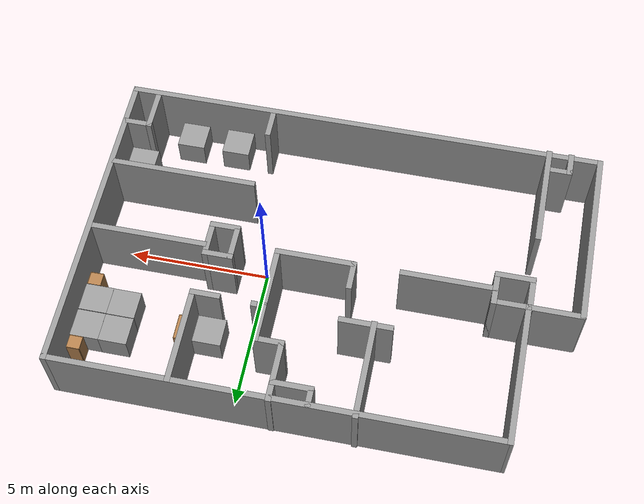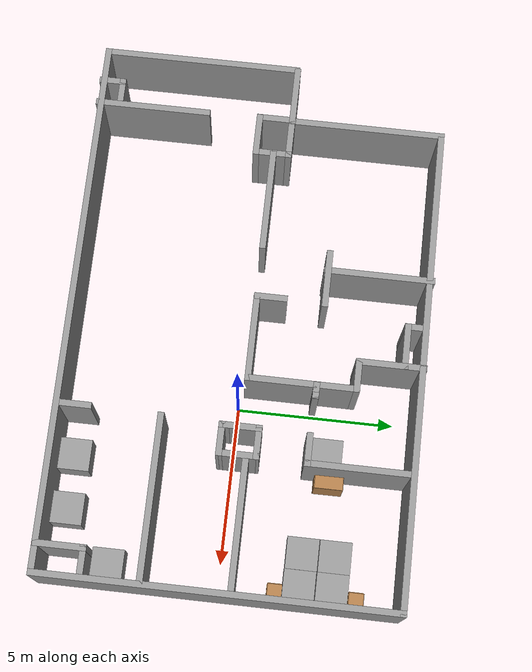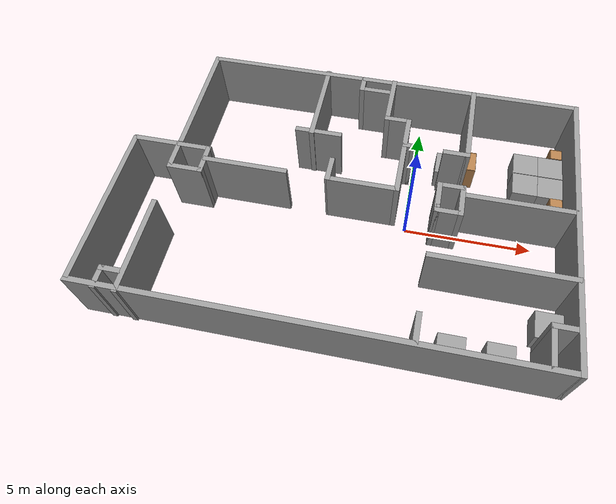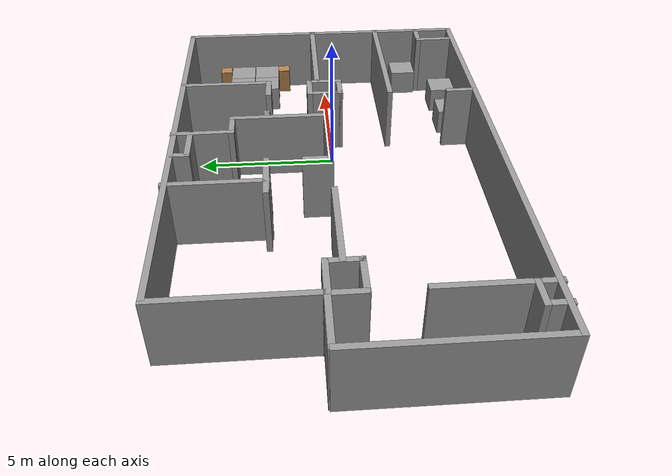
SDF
<sdf version="1.4">
 <world name="default">
  <model name="roy4">
   <link name="Wall_0">
    <collision name="Wall_0_Collision">
     <geometry><box><size>6.43031 0.2 2.5</size></box></geometry>
     <pose>0 0 1.25 0 -0 0</pose>
    </collision>
    <visual name="Wall_0_Visual">
     <pose>0 0 1.25 0 -0 0</pose>
     <geometry><box><size>6.43031 0.2 2.5</size></box></geometry>
     <material>
      <script><uri>file://media/materials/scripts/gazebo.material</uri><name>Gazebo/Grey</name></script>
     </material>
    </visual>
    <velocity_decay><linear>0</linear><angular>0</angular></velocity_decay>
    <pose>-17.0197 -4.40915 0 0 0 -1.5708</pose>
   </link>
   <link name="Wall_1">
    <collision name="Wall_1_Collision">
     <geometry><box><size>17.3127 0.2 2.5</size></box></geometry>
     <pose>0 0 1.25 0 -0 0</pose>
    </collision>
    <visual name="Wall_1_Visual">
     <pose>0 0 1.25 0 -0 0</pose>
     <geometry><box><size>17.3127 0.2 2.5</size></box></geometry>
     <material>
      <script><uri>file://media/materials/scripts/gazebo.material</uri><name>Gazebo/Grey</name></script>
     </material>
    </visual>
    <velocity_decay><linear>0</linear><angular>0</angular></velocity_decay>
    <pose>-8.46335 -7.52431 0 0 -0 0</pose>
   </link>
   <link name="Wall_11">
    <collision name="Wall_11_Collision">
     <geometry><box><size>3.74537 0.2 2.5</size></box></geometry>
     <pose>0 0 1.25 0 -0 0</pose>
    </collision>
    <visual name="Wall_11_Visual">
     <pose>0 0 1.25 0 -0 0</pose>
     <geometry><box><size>3.74537 0.2 2.5</size></box></geometry>
     <material>
      <script><uri>file://media/materials/scripts/gazebo.material</uri><name>Gazebo/Grey</name></script>
     </material>
    </visual>
    <velocity_decay><linear>0</linear><angular>0</angular></velocity_decay>
    <pose>-15.1992 -5.81781 0 0 0 -1.5708</pose>
   </link>
   <link name="Wall_13">
    <collision name="Wall_13_Collision">
     <geometry><box><size>1.26434 0.2 2.5</size></box></geometry>
     <pose>0 0 1.25 0 -0 0</pose>
    </collision>
    <visual name="Wall_13_Visual">
     <pose>0 0 1.25 0 -0 0</pose>
     <geometry><box><size>1.26434 0.2 2.5</size></box></geometry>
     <material>
      <script><uri>file://media/materials/scripts/gazebo.material</uri><name>Gazebo/Grey</name></script>
     </material>
    </visual>
    <velocity_decay><linear>0</linear><angular>0</angular></velocity_decay>
    <pose>-15.2322 -1.76883 0 0 0 -1.5708</pose>
   </link>
   <link name="Wall_19">
    <collision name="Wall_19_Collision">
     <geometry><box><size>3.5068 0.2 2.5</size></box></geometry>
     <pose>0 0 1.25 0 -0 0</pose>
    </collision>
    <visual name="Wall_19_Visual">
     <pose>0 0 1.25 0 -0 0</pose>
     <geometry><box><size>3.5068 0.2 2.5</size></box></geometry>
     <material>
      <script><uri>file://media/materials/scripts/gazebo.material</uri><name>Gazebo/Grey</name></script>
     </material>
    </visual>
    <velocity_decay><linear>0</linear><angular>0</angular></velocity_decay>
    <pose>-10.2614 2.01073 0 0 0 -1.5708</pose>
   </link>
   <link name="Wall_2">
    <collision name="Wall_2_Collision">
     <geometry><box><size>11.3253 0.2 2.5</size></box></geometry>
     <pose>0 0 1.25 0 -0 0</pose>
    </collision>
    <visual name="Wall_2_Visual">
     <pose>0 0 1.25 0 -0 0</pose>
     <geometry><box><size>11.3253 0.2 2.5</size></box></geometry>
     <material>
      <script><uri>file://media/materials/scripts/gazebo.material</uri><name>Gazebo/Grey</name></script>
     </material>
    </visual>
    <velocity_decay><linear>0</linear><angular>0</angular></velocity_decay>
    <pose>0.093002 -1.96166 0 0 -0 1.5708</pose>
   </link>
   <link name="Wall_21">
    <collision name="Wall_21_Collision">
     <geometry><box><size>1.868 0.2 2.5</size></box></geometry>
     <pose>0 0 1.25 0 -0 0</pose>
    </collision>
    <visual name="Wall_21_Visual">
     <pose>0 0 1.25 0 -0 0</pose>
     <geometry><box><size>1.868 0.2 2.5</size></box></geometry>
     <material>
      <script><uri>file://media/materials/scripts/gazebo.material</uri><name>Gazebo/Grey</name></script>
     </material>
    </visual>
    <velocity_decay><linear>0</linear><angular>0</angular></velocity_decay>
    <pose>-9.9903 0.392512 0 0 -0 0</pose>
   </link>
   <link name="Wall_23">
    <collision name="Wall_23_Collision">
     <geometry><box><size>4.25711 0.2 2.5</size></box></geometry>
     <pose>0 0 1.25 0 -0 0</pose>
    </collision>
    <visual name="Wall_23_Visual">
     <pose>0 0 1.25 0 -0 0</pose>
     <geometry><box><size>4.25711 0.2 2.5</size></box></geometry>
     <material>
      <script><uri>file://media/materials/scripts/gazebo.material</uri><name>Gazebo/Grey</name></script>
     </material>
    </visual>
    <velocity_decay><linear>0</linear><angular>0</angular></velocity_decay>
    <pose>-1.94744 -1.54232 0 0 -0 3.14159</pose>
   </link>
   <link name="Wall_25">
    <collision name="Wall_25_Collision">
     <geometry><box><size>1.3609 0.2 2.5</size></box></geometry>
     <pose>0 0 1.25 0 -0 0</pose>
    </collision>
    <visual name="Wall_25_Visual">
     <pose>0 0 1.25 0 -0 0</pose>
     <geometry><box><size>1.3609 0.2 2.5</size></box></geometry>
     <material>
      <script><uri>file://media/materials/scripts/gazebo.material</uri><name>Gazebo/Grey</name></script>
     </material>
    </visual>
    <velocity_decay><linear>0</linear><angular>0</angular></velocity_decay>
    <pose>-14.606 -1.26089 0 0 -0 0</pose>
   </link>
   <link name="Wall_26">
    <collision name="Wall_26_Collision">
     <geometry><box><size>1.25536 0.2 2.5</size></box></geometry>
     <pose>0 0 1.25 0 -0 0</pose>
    </collision>
    <visual name="Wall_26_Visual">
     <pose>0 0 1.25 0 -0 0</pose>
     <geometry><box><size>1.25536 0.2 2.5</size></box></geometry>
     <material>
      <script><uri>file://media/materials/scripts/gazebo.material</uri><name>Gazebo/Grey</name></script>
     </material>
    </visual>
    <velocity_decay><linear>0</linear><angular>0</angular></velocity_decay>
    <pose>-14.0256 -1.78857 0 0 0 -1.5708</pose>
   </link>
   <link name="Wall_27">
    <collision name="Wall_27_Collision">
     <geometry><box><size>1.39608 0.2 2.5</size></box></geometry>
     <pose>0 0 1.25 0 -0 0</pose>
    </collision>
    <visual name="Wall_27_Visual">
     <pose>0 0 1.25 0 -0 0</pose>
     <geometry><box><size>1.39608 0.2 2.5</size></box></geometry>
     <material>
      <script><uri>file://media/materials/scripts/gazebo.material</uri><name>Gazebo/Grey</name></script>
     </material>
    </visual>
    <velocity_decay><linear>0</linear><angular>0</angular></velocity_decay>
    <pose>-14.6236 -2.31625 0 0 -0 3.14159</pose>
   </link>
   <link name="Wall_29">
    <collision name="Wall_29_Collision">
     <geometry><box><size>3.33091 0.2 2.5</size></box></geometry>
     <pose>0 0 1.25 0 -0 0</pose>
    </collision>
    <visual name="Wall_29_Visual">
     <pose>0 0 1.25 0 -0 0</pose>
     <geometry><box><size>3.33091 0.2 2.5</size></box></geometry>
     <material>
      <script><uri>file://media/materials/scripts/gazebo.material</uri><name>Gazebo/Grey</name></script>
     </material>
    </visual>
    <velocity_decay><linear>0</linear><angular>0</angular></velocity_decay>
    <pose>-12.4249 -1.75339 0 0 -0 0</pose>
   </link>
   <link name="Wall_3">
    <collision name="Wall_3_Collision">
     <geometry><box><size>15.3708 0.2 2.5</size></box></geometry>
     <pose>0 0 1.25 0 -0 0</pose>
    </collision>
    <visual name="Wall_3_Visual">
     <pose>0 0 1.25 0 -0 0</pose>
     <geometry><box><size>15.3708 0.2 2.5</size></box></geometry>
     <material>
      <script><uri>file://media/materials/scripts/gazebo.material</uri><name>Gazebo/Grey</name></script>
     </material>
    </visual>
    <velocity_decay><linear>0</linear><angular>0</angular></velocity_decay>
    <pose>-7.49242 3.60098 0 0 -0 3.14159</pose>
   </link>
   <link name="Wall_31">
    <collision name="Wall_31_Collision">
     <geometry><box><size>2.77907 0.2 2.5</size></box></geometry>
     <pose>0 0 1.25 0 -0 0</pose>
    </collision>
    <visual name="Wall_31_Visual">
     <pose>0 0 1.25 0 -0 0</pose>
     <geometry><box><size>2.77907 0.2 2.5</size></box></geometry>
     <material>
      <script><uri>file://media/materials/scripts/gazebo.material</uri><name>Gazebo/Grey</name></script>
     </material>
    </visual>
    <velocity_decay><linear>0</linear><angular>0</angular></velocity_decay>
    <pose>-7.82203 -1.75339 0 0 -0 0</pose>
   </link>
   <link name="Wall_32">
    <collision name="Wall_32_Collision">
     <geometry><box><size>3.57716 0.2 2.5</size></box></geometry>
     <pose>0 0 1.25 0 -0 0</pose>
    </collision>
    <visual name="Wall_32_Visual">
     <pose>0 0 1.25 0 -0 0</pose>
     <geometry><box><size>3.57716 0.2 2.5</size></box></geometry>
     <material>
      <script><uri>file://media/materials/scripts/gazebo.material</uri><name>Gazebo/Grey</name></script>
     </material>
    </visual>
    <velocity_decay><linear>0</linear><angular>0</angular></velocity_decay>
    <pose>-6.53249 -0.064812 0 0 -0 1.5708</pose>
   </link>
   <link name="Wall_33">
    <collision name="Wall_33_Collision">
     <geometry><box><size>1.07947 0.2 2.5</size></box></geometry>
     <pose>0 0 1.25 0 -0 0</pose>
    </collision>
    <visual name="Wall_33_Visual">
     <pose>0 0 1.25 0 -0 0</pose>
     <geometry><box><size>1.07947 0.2 2.5</size></box></geometry>
     <material>
      <script><uri>file://media/materials/scripts/gazebo.material</uri><name>Gazebo/Grey</name></script>
     </material>
    </visual>
    <velocity_decay><linear>0</linear><angular>0</angular></velocity_decay>
    <pose>-6.97223 1.62377 0 0 -0 3.14159</pose>
   </link>
   <link name="Wall_34">
    <collision name="Wall_34_Collision">
     <geometry><box><size>2.20642 0.2 2.5</size></box></geometry>
     <pose>0 0 1.25 0 -0 0</pose>
    </collision>
    <visual name="Wall_34_Visual">
     <pose>0 0 1.25 0 -0 0</pose>
     <geometry><box><size>2.20642 0.2 2.5</size></box></geometry>
     <material>
      <script><uri>file://media/materials/scripts/gazebo.material</uri><name>Gazebo/Grey</name></script>
     </material>
    </visual>
    <velocity_decay><linear>0</linear><angular>0</angular></velocity_decay>
    <pose>-7.41196 2.62652 0 0 -0 1.5708</pose>
   </link>
   <link name="Wall_36">
    <collision name="Wall_36_Collision">
     <geometry><box><size>0.732004 0.2 2.5</size></box></geometry>
     <pose>0 0 1.25 0 -0 0</pose>
    </collision>
    <visual name="Wall_36_Visual">
     <pose>0 0 1.25 0 -0 0</pose>
     <geometry><box><size>0.732004 0.2 2.5</size></box></geometry>
     <material>
      <script><uri>file://media/materials/scripts/gazebo.material</uri><name>Gazebo/Grey</name></script>
     </material>
    </visual>
    <velocity_decay><linear>0</linear><angular>0</angular></velocity_decay>
    <pose>-8.69464 3.30855 0 0 0 -1.5708</pose>
   </link>
   <link name="Wall_37">
    <collision name="Wall_37_Collision">
     <geometry><box><size>1.47218 0.2 2.5</size></box></geometry>
     <pose>0 0 1.25 0 -0 0</pose>
    </collision>
    <visual name="Wall_37_Visual">
     <pose>0 0 1.25 0 -0 0</pose>
     <geometry><box><size>1.47218 0.2 2.5</size></box></geometry>
     <material>
      <script><uri>file://media/materials/scripts/gazebo.material</uri><name>Gazebo/Grey</name></script>
     </material>
    </visual>
    <velocity_decay><linear>0</linear><angular>0</angular></velocity_decay>
    <pose>-8.05855 3.04255 0 0 -0 0</pose>
   </link>
   <link name="Wall_41">
    <collision name="Wall_41_Collision">
     <geometry><box><size>1.05583 0.2 2.5</size></box></geometry>
     <pose>0 0 1.25 0 -0 0</pose>
    </collision>
    <visual name="Wall_41_Visual">
     <pose>0 0 1.25 0 -0 0</pose>
     <geometry><box><size>1.05583 0.2 2.5</size></box></geometry>
     <material>
      <script><uri>file://media/materials/scripts/gazebo.material</uri><name>Gazebo/Grey</name></script>
     </material>
    </visual>
    <velocity_decay><linear>0</linear><angular>0</angular></velocity_decay>
    <pose>-9.18038 -1.31757 0 0 -0 1.5708</pose>
   </link>
   <link name="Wall_43">
    <collision name="Wall_43_Collision">
     <geometry><box><size>0.523829 0.2 2.5</size></box></geometry>
     <pose>0 0 1.25 0 -0 0</pose>
    </collision>
    <visual name="Wall_43_Visual">
     <pose>0 0 1.25 0 -0 0</pose>
     <geometry><box><size>0.523829 0.2 2.5</size></box></geometry>
     <material>
      <script><uri>file://media/materials/scripts/gazebo.material</uri><name>Gazebo/Grey</name></script>
     </material>
    </visual>
    <velocity_decay><linear>0</linear><angular>0</angular></velocity_decay>
    <pose>-6.35845 0.382531 0 0 -0 0</pose>
   </link>
   <link name="Wall_44">
    <collision name="Wall_44_Collision">
     <geometry><box><size>0.21 0.2 2.5</size></box></geometry>
     <pose>0 0 1.25 0 -0 0</pose>
    </collision>
    <visual name="Wall_44_Visual">
     <pose>0 0 1.25 0 -0 0</pose>
     <geometry><box><size>0.21 0.2 2.5</size></box></geometry>
     <material>
      <script><uri>file://media/materials/scripts/gazebo.material</uri><name>Gazebo/Grey</name></script>
     </material>
    </visual>
    <velocity_decay><linear>0</linear><angular>0</angular></velocity_decay>
    <pose>-6.19154 0.382531 0 0 -0 0</pose>
   </link>
   <link name="Wall_46">
    <collision name="Wall_46_Collision">
     <geometry><box><size>1.05614 0.2 2.5</size></box></geometry>
     <pose>0 0 1.25 0 -0 0</pose>
    </collision>
    <visual name="Wall_46_Visual">
     <pose>0 0 1.25 0 -0 0</pose>
     <geometry><box><size>1.05614 0.2 2.5</size></box></geometry>
     <material>
      <script><uri>file://media/materials/scripts/gazebo.material</uri><name>Gazebo/Grey</name></script>
     </material>
    </visual>
    <velocity_decay><linear>0</linear><angular>0</angular></velocity_decay>
    <pose>-4.49659 0.33627 0 0 -0 0</pose>
   </link>
   <link name="Wall_47">
    <collision name="Wall_47_Collision">
     <geometry><box><size>3.46142 0.2 2.5</size></box></geometry>
     <pose>0 0 1.25 0 -0 0</pose>
    </collision>
    <visual name="Wall_47_Visual">
     <pose>0 0 1.25 0 -0 0</pose>
     <geometry><box><size>3.46142 0.2 2.5</size></box></geometry>
     <material>
      <script><uri>file://media/materials/scripts/gazebo.material</uri><name>Gazebo/Grey</name></script>
     </material>
    </visual>
    <velocity_decay><linear>0</linear><angular>0</angular></velocity_decay>
    <pose>-4.06852 1.96698 0 0 -0 1.5708</pose>
   </link>
   <link name="Wall_5">
    <collision name="Wall_5_Collision">
     <geometry><box><size>1.98005 0.2 2.5</size></box></geometry>
     <pose>0 0 1.25 0 -0 0</pose>
    </collision>
    <visual name="Wall_5_Visual">
     <pose>0 0 1.25 0 -0 0</pose>
     <geometry><box><size>1.98005 0.2 2.5</size></box></geometry>
     <material>
      <script><uri>file://media/materials/scripts/gazebo.material</uri><name>Gazebo/Grey</name></script>
     </material>
    </visual>
    <velocity_decay><linear>0</linear><angular>0</angular></velocity_decay>
    <pose>-16.0892 -1.25369 0 0 -0 0</pose>
   </link>
   <link name="Wall_51">
    <collision name="Wall_51_Collision">
     <geometry><box><size>1.34428 0.2 2.5</size></box></geometry>
     <pose>0 0 1.25 0 -0 0</pose>
    </collision>
    <visual name="Wall_51_Visual">
     <pose>0 0 1.25 0 -0 0</pose>
     <geometry><box><size>1.34428 0.2 2.5</size></box></geometry>
     <material>
      <script><uri>file://media/materials/scripts/gazebo.material</uri><name>Gazebo/Grey</name></script>
     </material>
    </visual>
    <velocity_decay><linear>0</linear><angular>0</angular></velocity_decay>
    <pose>-4.10199 -1.80601 0 0 -0 1.57185</pose>
   </link>
   <link name="Wall_52">
    <collision name="Wall_52_Collision">
     <geometry><box><size>1.07781 0.2 2.5</size></box></geometry>
     <pose>0 0 1.25 0 -0 0</pose>
    </collision>
    <visual name="Wall_52_Visual">
     <pose>0 0 1.25 0 -0 0</pose>
     <geometry><box><size>1.07781 0.2 2.5</size></box></geometry>
     <material>
      <script><uri>file://media/materials/scripts/gazebo.material</uri><name>Gazebo/Grey</name></script>
     </material>
    </visual>
    <velocity_decay><linear>0</linear><angular>0</angular></velocity_decay>
    <pose>-4.5415 -1.2341 0 0 -0 3.14159</pose>
   </link>
   <link name="Wall_53">
    <collision name="Wall_53_Collision">
     <geometry><box><size>1.21081 0.2 2.5</size></box></geometry>
     <pose>0 0 1.25 0 -0 0</pose>
    </collision>
    <visual name="Wall_53_Visual">
     <pose>0 0 1.25 0 -0 0</pose>
     <geometry><box><size>1.21081 0.2 2.5</size></box></geometry>
     <material>
      <script><uri>file://media/materials/scripts/gazebo.material</uri><name>Gazebo/Grey</name></script>
     </material>
    </visual>
    <velocity_decay><linear>0</linear><angular>0</angular></velocity_decay>
    <pose>-4.9804 -1.73951 0 0 0 -1.5708</pose>
   </link>
   <link name="Wall_54">
    <collision name="Wall_54_Collision">
     <geometry><box><size>0.333001 0.2 2.5</size></box></geometry>
     <pose>0 0 1.25 0 -0 0</pose>
    </collision>
    <visual name="Wall_54_Visual">
     <pose>0 0 1.25 0 -0 0</pose>
     <geometry><box><size>0.333001 0.2 2.5</size></box></geometry>
     <material>
      <script><uri>file://media/materials/scripts/gazebo.material</uri><name>Gazebo/Grey</name></script>
     </material>
    </visual>
    <velocity_decay><linear>0</linear><angular>0</angular></velocity_decay>
    <pose>-4.9804 -2.31141 0 0 0 -1.5708</pose>
   </link>
   <link name="Wall_55">
    <collision name="Wall_55_Collision">
     <geometry><box><size>1.07902 0.2 2.5</size></box></geometry>
     <pose>0 0 1.25 0 -0 0</pose>
    </collision>
    <visual name="Wall_55_Visual">
     <pose>0 0 1.25 0 -0 0</pose>
     <geometry><box><size>1.07902 0.2 2.5</size></box></geometry>
     <material>
      <script><uri>file://media/materials/scripts/gazebo.material</uri><name>Gazebo/Grey</name></script>
     </material>
    </visual>
    <velocity_decay><linear>0</linear><angular>0</angular></velocity_decay>
    <pose>-4.54089 -2.37791 0 0 -0 0</pose>
   </link>
   <link name="Wall_57">
    <collision name="Wall_57_Collision">
     <geometry><box><size>5.2974 0.2 2.5</size></box></geometry>
     <pose>0 0 1.25 0 -0 0</pose>
    </collision>
    <visual name="Wall_57_Visual">
     <pose>0 0 1.25 0 -0 0</pose>
     <geometry><box><size>5.2974 0.2 2.5</size></box></geometry>
     <material>
      <script><uri>file://media/materials/scripts/gazebo.material</uri><name>Gazebo/Grey</name></script>
     </material>
    </visual>
    <velocity_decay><linear>0</linear><angular>0</angular></velocity_decay>
    <pose>-2.50218 -4.27298 0 0 -0 3.14159</pose>
   </link>
   <link name="Wall_59">
    <collision name="Wall_59_Collision">
     <geometry><box><size>1.11465 0.2 2.5</size></box></geometry>
     <pose>0 0 1.25 0 -0 0</pose>
    </collision>
    <visual name="Wall_59_Visual">
     <pose>0 0 1.25 0 -0 0</pose>
     <geometry><box><size>1.11465 0.2 2.5</size></box></geometry>
     <material>
      <script><uri>file://media/materials/scripts/gazebo.material</uri><name>Gazebo/Grey</name></script>
     </material>
    </visual>
    <velocity_decay><linear>0</linear><angular>0</angular></velocity_decay>
    <pose>-5.11669 -6.98224 0 0 -0 1.5708</pose>
   </link>
   <link name="Wall_6">
    <collision name="Wall_6_Collision">
     <geometry><box><size>5.05467 0.2 2.5</size></box></geometry>
     <pose>0 0 1.25 0 -0 0</pose>
    </collision>
    <visual name="Wall_6_Visual">
     <pose>0 0 1.25 0 -0 0</pose>
     <geometry><box><size>5.05467 0.2 2.5</size></box></geometry>
     <material>
      <script><uri>file://media/materials/scripts/gazebo.material</uri><name>Gazebo/Grey</name></script>
     </material>
    </visual>
    <velocity_decay><linear>0</linear><angular>0</angular></velocity_decay>
    <pose>-15.1992 1.17364 0 0 -0 1.5708</pose>
   </link>
   <link name="Wall_61">
    <collision name="Wall_61_Collision">
     <geometry><box><size>0.973933 0.2 2.5</size></box></geometry>
     <pose>0 0 1.25 0 -0 0</pose>
    </collision>
    <visual name="Wall_61_Visual">
     <pose>0 0 1.25 0 -0 0</pose>
     <geometry><box><size>0.973933 0.2 2.5</size></box></geometry>
     <material>
      <script><uri>file://media/materials/scripts/gazebo.material</uri><name>Gazebo/Grey</name></script>
     </material>
    </visual>
    <velocity_decay><linear>0</linear><angular>0</angular></velocity_decay>
    <pose>-15.6 -6.91189 0 0 -0 3.14159</pose>
   </link>
   <link name="Wall_62">
    <collision name="Wall_62_Collision">
     <geometry><box><size>0.868396 0.2 2.5</size></box></geometry>
     <pose>0 0 1.25 0 -0 0</pose>
    </collision>
    <visual name="Wall_62_Visual">
     <pose>0 0 1.25 0 -0 0</pose>
     <geometry><box><size>0.868396 0.2 2.5</size></box></geometry>
     <material>
      <script><uri>file://media/materials/scripts/gazebo.material</uri><name>Gazebo/Grey</name></script>
     </material>
    </visual>
    <velocity_decay><linear>0</linear><angular>0</angular></velocity_decay>
    <pose>-15.9869 -7.24609 0 0 0 -1.5708</pose>
   </link>
   <link name="Wall_64">
    <collision name="Wall_64_Collision">
     <geometry><box><size>1.04429 0.2 2.5</size></box></geometry>
     <pose>0 0 1.25 0 -0 0</pose>
    </collision>
    <visual name="Wall_64_Visual">
     <pose>0 0 1.25 0 -0 0</pose>
     <geometry><box><size>1.04429 0.2 2.5</size></box></geometry>
     <material>
      <script><uri>file://media/materials/scripts/gazebo.material</uri><name>Gazebo/Grey</name></script>
     </material>
    </visual>
    <velocity_decay><linear>0</linear><angular>0</angular></velocity_decay>
    <pose>-0.367561 -6.0676 0 0 -0 3.14159</pose>
   </link>
   <link name="Wall_65">
    <collision name="Wall_65_Collision">
     <geometry><box><size>1.64233 0.2 2.5</size></box></geometry>
     <pose>0 0 1.25 0 -0 0</pose>
    </collision>
    <visual name="Wall_65_Visual">
     <pose>0 0 1.25 0 -0 0</pose>
     <geometry><box><size>1.64233 0.2 2.5</size></box></geometry>
     <material>
      <script><uri>file://media/materials/scripts/gazebo.material</uri><name>Gazebo/Grey</name></script>
     </material>
    </visual>
    <velocity_decay><linear>0</linear><angular>0</angular></velocity_decay>
    <pose>-0.789706 -6.78876 0 0 0 -1.5708</pose>
   </link>
   <static>1</static>
   <pose>6 2 0 0 -0 0</pose>
  </model>
  <model name="unit_box_14_0">
   <pose>1.33028 2.94013 0.5 0 -0 0</pose>
   <link name="link">
    <inertial>
     <mass>1</mass>
     <inertia><ixx>1</ixx><ixy>0</ixy><ixz>0</ixz><iyy>1</iyy><iyz>0</iyz><izz>1</izz></inertia>
    </inertial>
    <collision name="collision"><geometry><box><size>1 1 1</size></box></geometry></collision>
    <visual name="visual">
     <geometry><box><size>1 1 1</size></box></geometry>
     <material>
      <script><uri>file://media/materials/scripts/gazebo.material</uri><name>Gazebo/Grey</name></script>
     </material>
    </visual>
    <velocity_decay><linear>0</linear><angular>0</angular></velocity_decay>
   </link>
   <static>0</static>
  </model>
  <model name="unit_box_16_0">
   <pose>5.49292 3.51201 0.5 0 -0 0.000132</pose>
   <link name="link">
    <inertial>
     <mass>1</mass>
     <inertia><ixx>1</ixx><ixy>0</ixy><ixz>0</ixz><iyy>1</iyy><iyz>0</iyz><izz>1</izz></inertia>
    </inertial>
    <collision name="collision"><geometry><box><size>1 1 1</size></box></geometry></collision>
    <visual name="visual">
     <geometry><box><size>1 1 1</size></box></geometry>
     <material>
      <script><uri>file://media/materials/scripts/gazebo.material</uri><name>Gazebo/Grey</name></script>
     </material>
    </visual>
    <velocity_decay><linear>0</linear><angular>0</angular></velocity_decay>
   </link>
   <static>0</static>
  </model>
  <model name="unit_box_17">
   <pose>5.49298 2.49026 0.5 0 -0 2.6e-05</pose>
   <link name="link">
    <inertial>
     <mass>1</mass>
     <inertia><ixx>1</ixx><ixy>0</ixy><ixz>0</ixz><iyy>1</iyy><iyz>0</iyz><izz>1</izz></inertia>
    </inertial>
    <collision name="collision"><geometry><box><size>1 1 1</size></box></geometry></collision>
    <visual name="visual">
     <geometry><box><size>1 1 1</size></box></geometry>
     <material>
      <script><uri>file://media/materials/scripts/gazebo.material</uri><name>Gazebo/Grey</name></script>
     </material>
    </visual>
    <velocity_decay><linear>0</linear><angular>0</angular></velocity_decay>
   </link>
   <static>0</static>
  </model>
  <model name="unit_box_18_0">
   <pose>4.49245 3.51407 0.5 0 -0 0.00105</pose>
   <link name="link">
    <inertial>
     <mass>1</mass>
     <inertia><ixx>1</ixx><ixy>0</ixy><ixz>0</ixz><iyy>1</iyy><iyz>0</iyz><izz>1</izz></inertia>
    </inertial>
    <collision name="collision"><geometry><box><size>1 1 1</size></box></geometry></collision>
    <visual name="visual">
     <geometry><box><size>1 1 1</size></box></geometry>
     <material>
      <script><uri>file://media/materials/scripts/gazebo.material</uri><name>Gazebo/Grey</name></script>
     </material>
    </visual>
    <velocity_decay><linear>0</linear><angular>0</angular></velocity_decay>
   </link>
   <static>0</static>
  </model>
  <model name="unit_box_19_0">
   <pose>4.49281 2.4968 0.5 0 -0 2.6e-05</pose>
   <link name="link">
    <inertial>
     <mass>1</mass>
     <inertia><ixx>1</ixx><ixy>0</ixy><ixz>0</ixz><iyy>1</iyy><iyz>0</iyz><izz>1</izz></inertia>
    </inertial>
    <collision name="collision"><geometry><box><size>1 1 1</size></box></geometry></collision>
    <visual name="visual">
     <geometry><box><size>1 1 1</size></box></geometry>
     <material>
      <script><uri>file://media/materials/scripts/gazebo.material</uri><name>Gazebo/Grey</name></script>
     </material>
    </visual>
    <velocity_decay><linear>0</linear><angular>0</angular></velocity_decay>
   </link>
   <static>0</static>
  </model>
  <model name="cabinet_15">
   <static>1</static>
   <link name="cabinet_bottom_plate">
    <inertial>
     <pose>0 0 -1 0 -0 0</pose>
     <inertia><ixx>2.05</ixx><ixy>0</ixy><ixz>0</ixz><iyy>2.05</iyy><iyz>0</iyz><izz>2.05</izz></inertia>
     <mass>25</mass>
    </inertial>
    <collision name="cabinet_bottom_plate_geom">
     <pose>0 0 0.01 0 -0 0</pose>
     <geometry><box><size>0.45 0.45 0.02</size></box></geometry>
    </collision>
    <visual name="cabinet_bottom_plate_geom_visual">
     <pose>0 0 0.01 0 -0 0</pose>
     <geometry><box><size>0.45 0.45 0.02</size></box></geometry>
     <material>
      <script><uri>file://media/materials/scripts/gazebo.material</uri><name>Gazebo/Wood</name></script>
     </material>
    </visual>
    <collision name="cabinet_bottom_plate_geom_cabinet_back_plate">
     <pose>0.235 0 0.51 0 -0 0</pose>
     <geometry><box><size>0.02 0.45 1.02</size></box></geometry>
    </collision>
    <visual name="cabinet_bottom_plate_geom_cabinet_back_plate_visual">
     <pose>0.235 0 0.51 0 -0 0</pose>
     <geometry><box><size>0.02 0.45 1.02</size></box></geometry>
     <material>
      <script><uri>file://media/materials/scripts/gazebo.material</uri><name>Gazebo/Wood</name></script>
     </material>
    </visual>
    <collision name="cabinet_bottom_plate_geom_cabinet_left_plate">
     <pose>0 0.235 0.51 0 -0 0</pose>
     <geometry><box><size>0.45 0.02 1.02</size></box></geometry>
    </collision>
    <visual name="cabinet_bottom_plate_geom_cabinet_left_plate_visual">
     <pose>0 0.235 0.51 0 -0 0</pose>
     <geometry><box><size>0.45 0.02 1.02</size></box></geometry>
     <material>
      <script><uri>file://media/materials/scripts/gazebo.material</uri><name>Gazebo/Wood</name></script>
     </material>
    </visual>
    <collision name="cabinet_bottom_plate_geom_cabinet_middle_plate">
     <pose>0 0 0.51 0 -0 0</pose>
     <geometry><box><size>0.45 0.45 0.02</size></box></geometry>
    </collision>
    <visual name="cabinet_bottom_plate_geom_cabinet_middle_plate_visual">
     <pose>0 0 0.51 0 -0 0</pose>
     <geometry><box><size>0.45 0.45 0.02</size></box></geometry>
     <material>
      <script><uri>file://media/materials/scripts/gazebo.material</uri><name>Gazebo/Wood</name></script>
     </material>
    </visual>
    <collision name="cabinet_bottom_plate_geom_cabinet_right_plate">
     <pose>0 -0.235 0.51 0 -0 0</pose>
     <geometry><box><size>0.45 0.02 1.02</size></box></geometry>
    </collision>
    <visual name="cabinet_bottom_plate_geom_cabinet_right_plate_visual">
     <pose>0 -0.235 0.51 0 -0 0</pose>
     <geometry><box><size>0.45 0.02 1.02</size></box></geometry>
     <material>
      <script><uri>file://media/materials/scripts/gazebo.material</uri><name>Gazebo/Wood</name></script>
     </material>
    </visual>
    <collision name="cabinet_bottom_plate_geom_cabinet_top_plate">
     <pose>0 0 1.01 0 -0 0</pose>
     <geometry><box><size>0.45 0.45 0.02</size></box></geometry>
    </collision>
    <visual name="cabinet_bottom_plate_geom_cabinet_top_plate_visual">
     <pose>0 0 1.01 0 -0 0</pose>
     <geometry><box><size>0.45 0.45 0.02</size></box></geometry>
     <material>
      <script><uri>file://media/materials/scripts/gazebo.material</uri><name>Gazebo/Wood</name></script>
     </material>
    </visual>
    <velocity_decay><linear>0</linear><angular>0</angular></velocity_decay>
   </link>
   <pose>5.72959 1.75928 0 0 0 -1.5637</pose>
  </model>
  <model name="cabinet_16">
   <static>1</static>
   <link name="cabinet_bottom_plate">
    <inertial>
     <pose>0 0 -1 0 -0 0</pose>
     <inertia><ixx>2.05</ixx><ixy>0</ixy><ixz>0</ixz><iyy>2.05</iyy><iyz>0</iyz><izz>2.05</izz></inertia>
     <mass>25</mass>
    </inertial>
    <collision name="cabinet_bottom_plate_geom">
     <pose>0 0 0.01 0 -0 0</pose>
     <geometry><box><size>0.45 0.45 0.02</size></box></geometry>
    </collision>
    <visual name="cabinet_bottom_plate_geom_visual">
     <pose>0 0 0.01 0 -0 0</pose>
     <geometry><box><size>0.45 0.45 0.02</size></box></geometry>
     <material>
      <script><uri>file://media/materials/scripts/gazebo.material</uri><name>Gazebo/Wood</name></script>
     </material>
    </visual>
    <collision name="cabinet_bottom_plate_geom_cabinet_back_plate">
     <pose>0.235 0 0.51 0 -0 0</pose>
     <geometry><box><size>0.02 0.45 1.02</size></box></geometry>
    </collision>
    <visual name="cabinet_bottom_plate_geom_cabinet_back_plate_visual">
     <pose>0.235 0 0.51 0 -0 0</pose>
     <geometry><box><size>0.02 0.45 1.02</size></box></geometry>
     <material>
      <script><uri>file://media/materials/scripts/gazebo.material</uri><name>Gazebo/Wood</name></script>
     </material>
    </visual>
    <collision name="cabinet_bottom_plate_geom_cabinet_left_plate">
     <pose>0 0.235 0.51 0 -0 0</pose>
     <geometry><box><size>0.45 0.02 1.02</size></box></geometry>
    </collision>
    <visual name="cabinet_bottom_plate_geom_cabinet_left_plate_visual">
     <pose>0 0.235 0.51 0 -0 0</pose>
     <geometry><box><size>0.45 0.02 1.02</size></box></geometry>
     <material>
      <script><uri>file://media/materials/scripts/gazebo.material</uri><name>Gazebo/Wood</name></script>
     </material>
    </visual>
    <collision name="cabinet_bottom_plate_geom_cabinet_middle_plate">
     <pose>0 0 0.51 0 -0 0</pose>
     <geometry><box><size>0.45 0.45 0.02</size></box></geometry>
    </collision>
    <visual name="cabinet_bottom_plate_geom_cabinet_middle_plate_visual">
     <pose>0 0 0.51 0 -0 0</pose>
     <geometry><box><size>0.45 0.45 0.02</size></box></geometry>
     <material>
      <script><uri>file://media/materials/scripts/gazebo.material</uri><name>Gazebo/Wood</name></script>
     </material>
    </visual>
    <collision name="cabinet_bottom_plate_geom_cabinet_right_plate">
     <pose>0 -0.235 0.51 0 -0 0</pose>
     <geometry><box><size>0.45 0.02 1.02</size></box></geometry>
    </collision>
    <visual name="cabinet_bottom_plate_geom_cabinet_right_plate_visual">
     <pose>0 -0.235 0.51 0 -0 0</pose>
     <geometry><box><size>0.45 0.02 1.02</size></box></geometry>
     <material>
      <script><uri>file://media/materials/scripts/gazebo.material</uri><name>Gazebo/Wood</name></script>
     </material>
    </visual>
    <collision name="cabinet_bottom_plate_geom_cabinet_top_plate">
     <pose>0 0 1.01 0 -0 0</pose>
     <geometry><box><size>0.45 0.45 0.02</size></box></geometry>
    </collision>
    <visual name="cabinet_bottom_plate_geom_cabinet_top_plate_visual">
     <pose>0 0 1.01 0 -0 0</pose>
     <geometry><box><size>0.45 0.45 0.02</size></box></geometry>
     <material>
      <script><uri>file://media/materials/scripts/gazebo.material</uri><name>Gazebo/Wood</name></script>
     </material>
    </visual>
    <velocity_decay><linear>0</linear><angular>0</angular></velocity_decay>
   </link>
   <pose>5.73253 4.2659 0 0 -0 3.13928</pose>
  </model>
  <model name="bookshelf_0">
   <static>1</static>
   <link name="link">
    <inertial><mass>1</mass></inertial>
    <collision name="back">
     <pose>0 0.005 0.6 0 -0 0</pose>
     <geometry><box><size>0.9 0.01 1.2</size></box></geometry>
    </collision>
    <visual name="visual1">
     <pose>0 0.005 0.6 0 -0 0</pose>
     <geometry><box><size>0.9 0.01 1.2</size></box></geometry>
     <material>
      <script><uri>file://media/materials/scripts/gazebo.material</uri><name>Gazebo/Wood</name></script>
     </material>
    </visual>
    <collision name="left_side">
     <pose>0.45 -0.195 0.6 0 -0 0</pose>
     <geometry><box><size>0.02 0.4 1.2</size></box></geometry>
    </collision>
    <visual name="visual2">
     <pose>0.45 -0.195 0.6 0 -0 0</pose>
     <geometry><box><size>0.02 0.4 1.2</size></box></geometry>
     <material>
      <script><uri>file://media/materials/scripts/gazebo.material</uri><name>Gazebo/Wood</name></script>
     </material>
    </visual>
    <collision name="right_side">
     <pose>-0.45 -0.195 0.6 0 -0 0</pose>
     <geometry><box><size>0.02 0.4 1.2</size></box></geometry>
    </collision>
    <visual name="visual3">
     <pose>-0.45 -0.195 0.6 0 -0 0</pose>
     <geometry><box><size>0.02 0.4 1.2</size></box></geometry>
     <material>
      <script><uri>file://media/materials/scripts/gazebo.material</uri><name>Gazebo/Wood</name></script>
     </material>
    </visual>
    <collision name="bottom">
     <pose>0 -0.195 0.03 0 -0 0</pose>
     <geometry><box><size>0.88 0.4 0.06</size></box></geometry>
    </collision>
    <visual name="visual4">
     <pose>0 -0.195 0.03 0 -0 0</pose>
     <geometry><box><size>0.88 0.4 0.06</size></box></geometry>
     <material>
      <script><uri>file://media/materials/scripts/gazebo.material</uri><name>Gazebo/Wood</name></script>
     </material>
    </visual>
    <collision name="top">
     <pose>0 -0.195 1.19 0 -0 0</pose>
     <geometry><box><size>0.88 0.4 0.02</size></box></geometry>
    </collision>
    <visual name="visual5">
     <pose>0 -0.195 1.19 0 -0 0</pose>
     <geometry><box><size>0.88 0.4 0.02</size></box></geometry>
     <material>
      <script><uri>file://media/materials/scripts/gazebo.material</uri><name>Gazebo/Wood</name></script>
     </material>
    </visual>
    <collision name="low_shelf">
     <pose>0 -0.195 0.43 0 -0 0</pose>
     <geometry><box><size>0.88 0.4 0.02</size></box></geometry>
    </collision>
    <visual name="visual6">
     <pose>0 -0.195 0.43 0 -0 0</pose>
     <geometry><box><size>0.88 0.4 0.02</size></box></geometry>
     <material>
      <script><uri>file://media/materials/scripts/gazebo.material</uri><name>Gazebo/Wood</name></script>
     </material>
    </visual>
    <collision name="high_shelf">
     <pose>0 -0.195 0.8 0 -0 0</pose>
     <geometry><box><size>0.88 0.4 0.02</size></box></geometry>
    </collision>
    <visual name="visual7">
     <pose>0 -0.195 0.8 0 -0 0</pose>
     <geometry><box><size>0.88 0.4 0.02</size></box></geometry>
     <material>
      <script><uri>file://media/materials/scripts/gazebo.material</uri><name>Gazebo/Wood</name></script>
     </material>
    </visual>
    <velocity_decay><linear>0</linear><angular>0</angular></velocity_decay>
   </link>
   <pose>2.43232 3.09577 0 0 0 -1.5637</pose>
  </model>
  <model name="unit_box_20_0">
   <pose>5.48174 -3.45487 0.5 0 -0 1e-06</pose>
   <link name="link">
    <inertial>
     <mass>1</mass>
     <inertia><ixx>1</ixx><ixy>0</ixy><ixz>0</ixz><iyy>1</iyy><iyz>0</iyz><izz>1</izz></inertia>
    </inertial>
    <collision name="collision"><geometry><box><size>1 1 1</size></box></geometry></collision>
    <visual name="visual">
     <geometry><box><size>1 1 1</size></box></geometry>
     <material>
      <script><uri>file://media/materials/scripts/gazebo.material</uri><name>Gazebo/Grey</name></script>
     </material>
    </visual>
    <velocity_decay><linear>0</linear><angular>0</angular></velocity_decay>
   </link>
   <static>0</static>
  </model>
  <model name="unit_box_21_0">
   <pose>3.88632 -4.91365 0.5 0 -0 0</pose>
   <link name="link">
    <inertial>
     <mass>1</mass>
     <inertia><ixx>1</ixx><ixy>0</ixy><ixz>0</ixz><iyy>1</iyy><iyz>0</iyz><izz>1</izz></inertia>
    </inertial>
    <collision name="collision"><geometry><box><size>1 1 1</size></box></geometry></collision>
    <visual name="visual">
     <geometry><box><size>1 1 1</size></box></geometry>
     <material>
      <script><uri>file://media/materials/scripts/gazebo.material</uri><name>Gazebo/Grey</name></script>
     </material>
    </visual>
    <velocity_decay><linear>0</linear><angular>0</angular></velocity_decay>
   </link>
   <static>0</static>
  </model>
  <model name="unit_box_22">
   <pose>2.18196 -4.9243 0.5 0 -0 2.8e-05</pose>
   <link name="link">
    <inertial>
     <mass>1</mass>
     <inertia><ixx>1</ixx><ixy>0</ixy><ixz>0</ixz><iyy>1</iyy><iyz>0</iyz><izz>1</izz></inertia>
    </inertial>
    <collision name="collision"><geometry><box><size>1 1 1</size></box></geometry></collision>
    <visual name="visual">
     <geometry><box><size>1 1 1</size></box></geometry>
     <material>
      <script><uri>file://media/materials/scripts/gazebo.material</uri><name>Gazebo/Grey</name></script>
     </material>
    </visual>
    <velocity_decay><linear>0</linear><angular>0</angular></velocity_decay>
   </link>
   <static>0</static>
  </model>
 </world>
</sdf>
